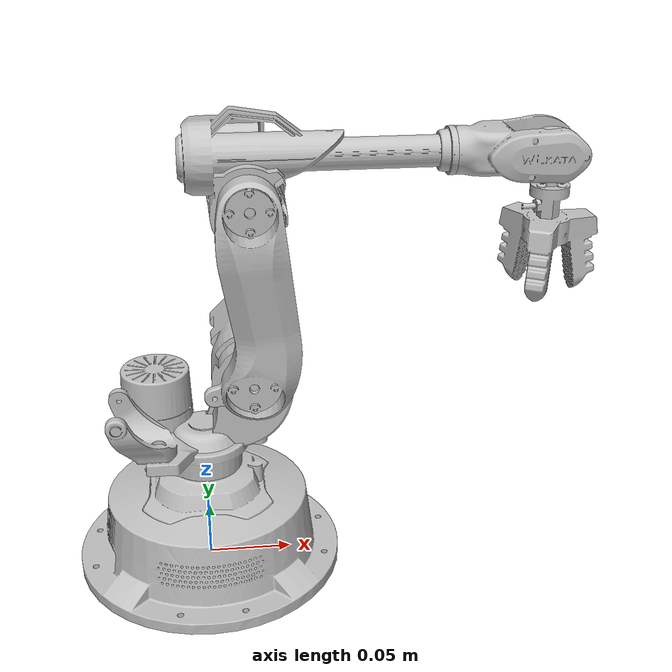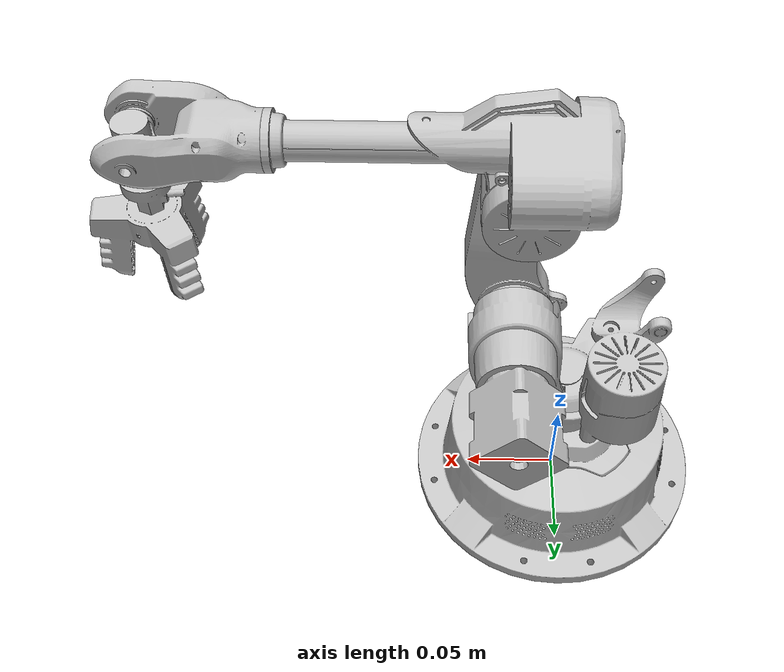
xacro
<?xml version="1.0"?>
<robot xmlns:xacro="http://www.ros.org/wiki/xacro" name="wlkata_mirobot_description">
    <xacro:arg name="initial_positions_file" default="initial_positions.yaml" />

    <!-- Import wlkata_mirobot_description urdf file -->
    <xacro:include filename="$(find wlkata_mirobot_description)/urdf/wlkata_mirobot_description.urdf" />

    <!-- Import control_xacro -->
    <xacro:include filename="wlkata_mirobot_description.ros2_control.xacro" />

    <xacro:wlkata_mirobot_description_ros2_control name="FakeSystem" initial_positions_file="$(arg initial_positions_file)"/>

</robot>

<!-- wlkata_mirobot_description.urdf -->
<robot
  name="wlkata_mirobot_description">
  <link
    name="base_link">
    <inertial>
      <origin
        xyz="0.00072637 2.209E-05 0.024286"
        rpy="0 0 0" />
      <mass
        value="5.4549" />
      <inertia
        ixx="0.0068505"
        ixy="-3.1029E-07"
        ixz="4.3798E-07"
        iyy="0.0066527"
        iyz="-7.7717E-07"
        izz="0.011461" />
    </inertial>
    <visual>
      <origin
        xyz="0 0 0"
        rpy="0 0 0" />
      <geometry>
        <mesh
          filename="package://wlkata_mirobot_description/meshes/base_link.STL" />
      </geometry>
      <material
        name="">
        <color
          rgba="0.75294 0.75294 0.75294 1" />
      </material>
    </visual>
    <collision>
      <origin
        xyz="0 0 0"
        rpy="0 0 0" />
      <geometry>
        <mesh
          filename="package://wlkata_mirobot_description/meshes/base_link.STL" />
      </geometry>
    </collision>
  </link>
  <link
    name="link1">
    <inertial>
      <origin
        xyz="0.010226 0.017244 -0.018123"
        rpy="0 0 0" />
      <mass
        value="1.965" />
      <inertia
        ixx="0.0014023"
        ixy="3.5897E-05"
        ixz="3.8285E-05"
        iyy="0.00073623"
        iyz="-0.00019681"
        izz="0.0013706" />
    </inertial>
    <visual>
      <origin
        xyz="0 0 0"
        rpy="0 0 0" />
      <geometry>
        <mesh
          filename="package://wlkata_mirobot_description/meshes/link1.STL" />
      </geometry>
      <material
        name="">
        <color
          rgba="0.75294 0.75294 0.75294 1" />
      </material>
    </visual>
    <collision>
      <origin
        xyz="0 0 0"
        rpy="0 0 0" />
      <geometry>
        <mesh
          filename="package://wlkata_mirobot_description/meshes/link1.STL" />
      </geometry>
    </collision>
  </link>
  <joint
    name="joint1"
    type="revolute">
    <origin
      xyz="0 0 0.127"
      rpy="0 0 0" />
    <parent
      link="base_link" />
    <child
      link="link1" />
    <axis
      xyz="0 0 1" />
    <limit
      lower="-1.919"
      upper="2.792"
      effort="100.1"
      velocity="1.1" />
  </joint>
  <link
    name="link2">
    <inertial>
      <origin
        xyz="0.054564 0.0036247 -0.02961"
        rpy="0 0 0" />
      <mass
        value="0.7031" />
      <inertia
        ixx="0.00012083"
        ixy="4.1868E-05"
        ixz="6.1178E-05"
        iyy="0.00091302"
        iyz="1.6109E-06"
        izz="0.00096355" />
    </inertial>
    <visual>
      <origin
        xyz="0 0 0"
        rpy="0 0 0" />
      <geometry>
        <mesh
          filename="package://wlkata_mirobot_description/meshes/link2.STL" />
      </geometry>
      <material
        name="">
        <color
          rgba="0.75294 0.75294 0.75294 1" />
      </material>
    </visual>
    <collision>
      <origin
        xyz="0 0 0"
        rpy="0 0 0" />
      <geometry>
        <mesh
          filename="package://wlkata_mirobot_description/meshes/link2.STL" />
      </geometry>
    </collision>
  </link>
  <joint
    name="joint2"
    type="revolute">
    <origin
      xyz="0.029687 0 0"
      rpy="-1.5708 -1.5708 0" />
    <parent
      link="link1" />
    <child
      link="link2" />
    <axis
      xyz="0 0 1" />
    <limit
      lower="-0.61"
      upper="1.221"
      effort="100.1"
      velocity="1.1" />
  </joint>
  <link
    name="link3">
    <inertial>
      <origin
        xyz="0.010015 0.0067303 0.0058691"
        rpy="0 0 0" />
      <mass
        value="1.1994" />
      <inertia
        ixx="0.00055805"
        ixy="-1.8278E-06"
        ixz="-3.762E-05"
        iyy="0.00046464"
        iyz="1.9262E-05"
        izz="0.00060548" />
    </inertial>
    <visual>
      <origin
        xyz="0 0 0"
        rpy="0 0 0" />
      <geometry>
        <mesh
          filename="package://wlkata_mirobot_description/meshes/link3.STL" />
      </geometry>
      <material
        name="">
        <color
          rgba="0.75294 0.75294 0.75294 1" />
      </material>
    </visual>
    <collision>
      <origin
        xyz="0 0 0"
        rpy="0 0 0" />
      <geometry>
        <mesh
          filename="package://wlkata_mirobot_description/meshes/link3.STL" />
      </geometry>
    </collision>
  </link>
  <joint
    name="joint3"
    type="revolute">
    <origin
      xyz="0.108 0 0"
      rpy="0 0 0" />
    <parent
      link="link2" />
    <child
      link="link3" />
    <axis
      xyz="0 0 1" />
    <limit
      lower="-2.094"
      upper="1.047"
      effort="100.1"
      velocity="1.1" />
  </joint>
  <link
    name="link4">
    <inertial>
      <origin
        xyz="-2.27494176252563E-06 0.00429946429752296 -0.0217007586034353"
        rpy="0 0 0" />
      <mass
        value="0.261362285743437" />
      <inertia
        ixx="7.62946525456058E-05"
        ixy="-1.8813595005788E-09"
        ixz="1.37948236797395E-08"
        iyy="8.44036851142834E-05"
        iyz="-7.8757185275307E-07"
        izz="1.78027327989624E-05" />
    </inertial>
    <visual>
      <origin
        xyz="0 0 0"
        rpy="0 0 0" />
      <geometry>
        <mesh
          filename="package://wlkata_mirobot_description/meshes/link4.STL" />
      </geometry>
      <material
        name="">
        <color
          rgba="0.752941176470588 0.752941176470588 0.752941176470588 1" />
      </material>
    </visual>
    <collision>
      <origin
        xyz="0 0 0"
        rpy="0 0 0" />
      <geometry>
        <mesh
          filename="package://wlkata_mirobot_description/meshes/link4.STL" />
      </geometry>
    </collision>
  </link>
  <joint
    name="joint4"
    type="revolute">
    <origin
      xyz="0.02 0.16875 0"
      rpy="-1.5708 0 0" />
    <parent
      link="link3" />
    <child
      link="link4" />
    <axis
      xyz="0 0 1" />
    <limit
      lower="-3.141"
      upper="2.53"
      effort="100.1"
      velocity="1.1" />
  </joint>
  <link
    name="link5">
    <inertial>
      <origin
        xyz="-1.49291428453435E-05 0.00217467833122231 0.000185578609392454"
        rpy="0 0 0" />
      <mass
        value="0.0483173226824662" />
      <inertia
        ixx="3.27681389556251E-06"
        ixy="-2.35584003566182E-09"
        ixz="1.59030016893255E-10"
        iyy="2.49207926320219E-06"
        iyz="1.94517744625766E-08"
        izz="2.72634770886973E-06" />
    </inertial>
    <visual>
      <origin
        xyz="0 0 0"
        rpy="0 0 0" />
      <geometry>
        <mesh
          filename="package://wlkata_mirobot_description/meshes/link5.STL" />
      </geometry>
      <material
        name="">
        <color
          rgba="0.752941176470588 0.752941176470588 0.752941176470588 1" />
      </material>
    </visual>
    <collision>
      <origin
        xyz="0 0 0"
        rpy="0 0 0" />
      <geometry>
        <mesh
          filename="package://wlkata_mirobot_description/meshes/link5.STL" />
      </geometry>
    </collision>
  </link>
  <joint
    name="joint5"
    type="revolute">
    <origin
      xyz="0 0 0"
      rpy="1.5708 -1.5708 0" />
    <parent
      link="link4" />
    <child
      link="link5" />
    <axis
      xyz="0 0 1" />
    <limit
      lower="-3.49"
      upper="0.523"
      effort="100.1"
      velocity="1.1" />
  </joint>
  <link
    name="link6">
    <inertial>
      <origin
        xyz="-5.96518891830544E-05 4.61869313414281E-06 0.0512817501478371"
        rpy="0 0 0" />
      <mass
        value="0.228704914887219" />
      <inertia
        ixx="2.95425401479579E-05"
        ixy="1.6149345364096E-10"
        ixz="9.93219991005698E-09"
        iyy="2.95495732583093E-05"
        iyz="-1.24362201752828E-09"
        izz="1.94804289719368E-05" />
    </inertial>
    <visual>
      <origin
        xyz="0 0 0"
        rpy="0 0 0" />
      <geometry>
        <mesh
          filename="package://wlkata_mirobot_description/meshes/link6.STL" />
      </geometry>
      <material
        name="">
        <color
          rgba="0.752941176470588 0.752941176470588 0.752941176470588 1" />
      </material>
    </visual>
    <collision>
      <origin
        xyz="0 0 0"
        rpy="0 0 0" />
      <geometry>
        <mesh
          filename="package://wlkata_mirobot_description/meshes/link6.STL" />
      </geometry>
    </collision>
  </link>
  <joint
    name="joint6"
    type="revolute">
    <origin
      xyz="0 0 0"
      rpy="-1.5708 0 0" />
    <parent
      link="link5" />
    <child
      link="link6" />
    <axis
      xyz="0 0 -1" />
    <limit
      lower="-6.283"
      upper="6.283"
      effort="100.1"
      velocity="1.1" />
  </joint>
</robot>
